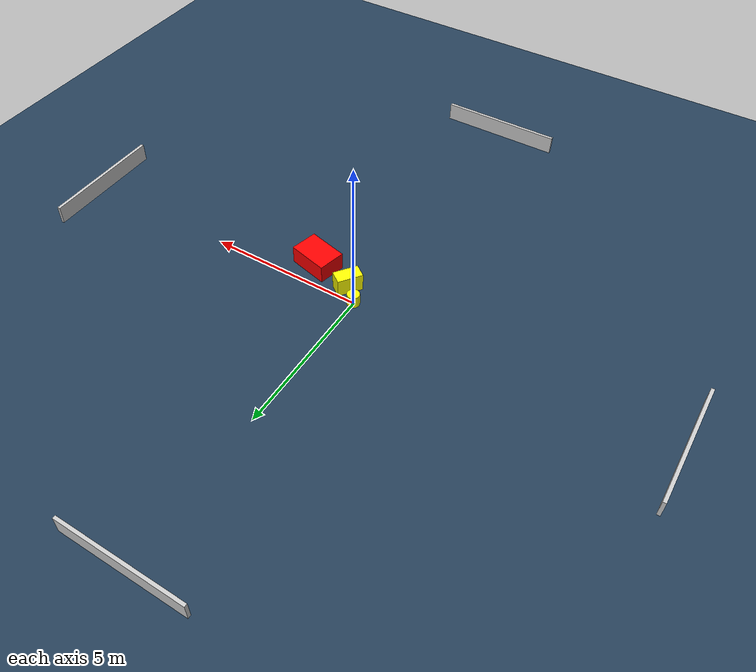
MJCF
<?xml version="1.0" ?>
<mujoco model="generated_environment">
  <option timestep="0.01" integrator="RK4" cone="elliptic"/>
  <default>
    <geom density="1"/>
  </default>
  <asset>
    <texture builtin="gradient" height="3072" name="skybox" rgb1="0.3 0.5 0.7" rgb2="0 0 0" type="skybox" width="512"/>
    <texture builtin="checker" height="300" name="groundplane" rgb1="0.2 0.3 0.4" rgb2="0.1 0.2 0.3" type="2d" width="300"/>
    <material name="groundplane" reflectance="0.2" texrepeat="5 5" texture="groundplane"/>
  </asset>
  <worldbody>
    <light dir="0 0 -1" directional="true" pos="0 0 1.5"/>
    <geom condim="3" friction="0.5 0.005 0.001" material="groundplane" name="floor" pos="0 0 0" size="0 0 0.05" type="plane"/>
    <body name="walls">
      <geom name="wall_1" condim="4" pos="-10.0 0.0 0.3" rgba="0.800000011920929 0.800000011920929 0.800000011920929 1.0" size="0.05 2.0 0.3" type="box"/>
      <geom name="wall_2" condim="4" pos="10.0 0.0 0.3" rgba="0.800000011920929 0.800000011920929 0.800000011920929 1.0" size="0.05 2.0 0.3" type="box"/>
      <geom name="wall_3" condim="4" pos="0.0 -10.0 0.3" rgba="0.800000011920929 0.800000011920929 0.800000011920929 1.0" size="2.0 0.05 0.3" type="box"/>
      <geom name="wall_4" condim="4" pos="0.0 10.0 0.3" rgba="0.800000011920929 0.800000011920929 0.800000011920929 1.0" size="2.0 0.05 0.3" type="box"/>
    </body>
    <body name="robot">
      <joint name="joint_x" type="slide" pos="0 0 0" axis="1 0 0"/>
      <joint name="joint_y" type="slide" pos="0 0 0" axis="0 1 0"/>
      <geom name="robot" type="cylinder" pos="0.0 0.0 0.2" size="0.2 0.2 0.0" mass="5.0" friction="1.0 0.005 0.0001" condim="4" rgba="1.0 1.0 0.0 1.0"/>
    </body>
    <body name="obstacle_1_movable">
      <geom name="obstacle_1_movable" condim="4" pos="0.48290909559218 -0.45217763272614625 0.3" euler="0 0 233.61714327234773" friction="0.0 0.005 0.001" rgba="1.0 1.0 0.0 1.0" size="0.4048297393873286 0.22175157778525972 0.3" type="box" mass="0.1"/>
      <joint type="free"/>
    </body>
    <body name="obstacle_2_static">
      <geom name="obstacle_2_static" condim="4" pos="1.8080823948866844 -0.8072720057839976 0.3" euler="0 0 166.46217218707213" friction="0.0 0.005 0.001" rgba="1.0 0.0 0.0 1.0" size="0.6395193425007313 0.4414912267209962 0.3" type="box"/>
    </body>
  </worldbody>
  <actuator>
    <motor name="actuator_x" joint="joint_x" gear="1" ctrlrange="-1 1"/>
    <motor name="actuator_y" joint="joint_y" gear="1" ctrlrange="-1 1"/>
  </actuator>
</mujoco>
